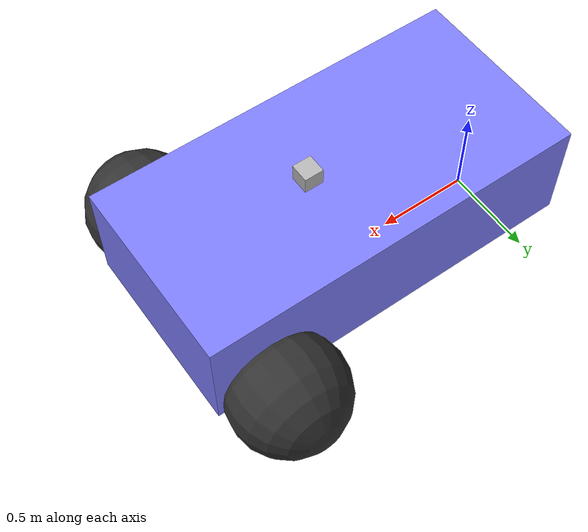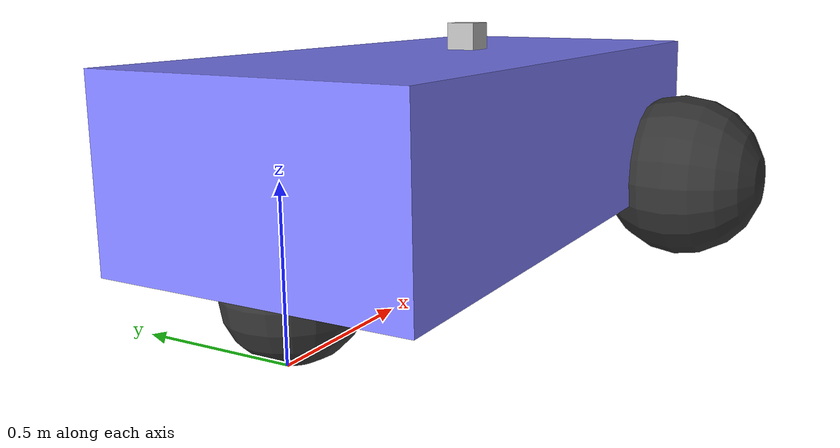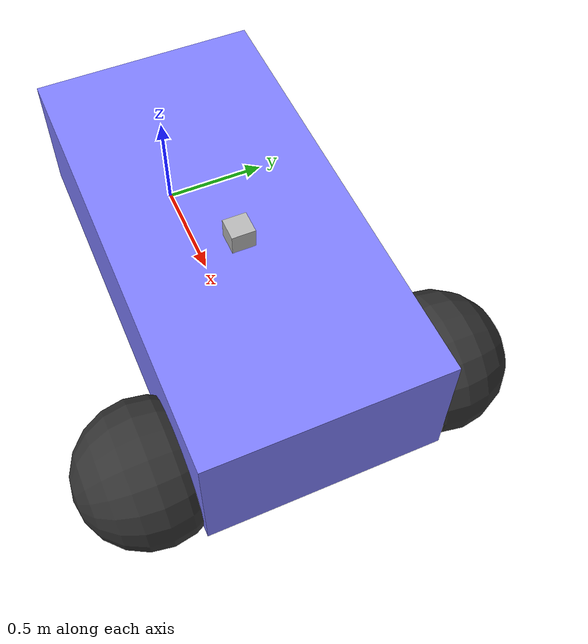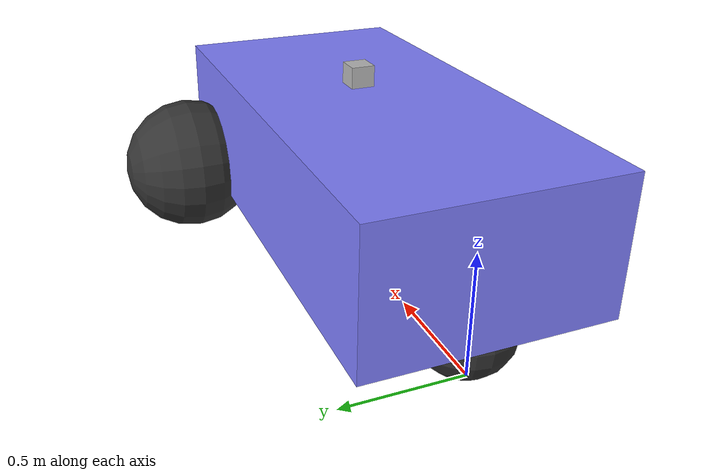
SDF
<?xml version="1.0" ?>
<!--
  You can echo lidar messages using:
    ign topic -e -t /lidar
-->
<sdf version="1.6">
<model name='vehicle_blue'>
      <pose>1 0 0.325 0 0 0.0</pose>
      <link name='chassis'>
        <pose>-0.151427 -0 0.175 0 -0 0</pose>
        <inertial>
          <mass>1.14395</mass>
          <inertia>
            <ixx>0.126164</ixx>
            <ixy>0</ixy>
            <ixz>0</ixz>
            <iyy>0.416519</iyy>
            <iyz>0</iyz>
            <izz>0.481014</izz>
          </inertia>
        </inertial>
        <visual name='visual'>
          <geometry>
            <box>
              <size>2.01142 1 0.568726</size>
            </box>
          </geometry>
          <material>
            <ambient>0.5 0.5 1.0 1</ambient>
            <diffuse>0.5 0.5 1.0 1</diffuse>
            <specular>0.0 0.0 1.0 1</specular>
          </material>
        </visual>
        <collision name='collision'>
          <geometry>
            <box>
              <size>2.01142 1 0.568726</size>
            </box>
          </geometry>
        </collision>
      </link>

      <link name="lidar_link">
        <pose>0 0 0.5 0 0 0</pose>
        <inertial>
          <mass>0.1</mass>
          <inertia>
            <ixx>0.000166667</ixx>
            <iyy>0.000166667</iyy>
            <izz>0.000166667</izz>
          </inertia>
        </inertial>
        <collision name="collision">
          <geometry>
            <box>
              <size>0.1 0.1 0.1</size>
            </box>
          </geometry>
        </collision>
        <visual name="visual">
          <geometry>
            <box>
              <size>0.1 0.1 0.1</size>
            </box>
          </geometry>
        </visual>
        <sensor name='gpu_lidar' type='gpu_lidar'>
          <pose>0 0 0 0 0 0</pose>
          <topic>lidar</topic>
          <update_rate>10</update_rate>
          <lidar>
            <scan>
              <horizontal>
                <samples>64</samples> <!-- Changed from 640 to 64  -->
                <resolution>1</resolution>
                <min_angle>-1.396263</min_angle>
                <max_angle>1.396263</max_angle>
              </horizontal>
              <vertical>
                <samples>1</samples>
                <resolution>1</resolution>
                <min_angle>0.0</min_angle>
                <max_angle>0.0</max_angle>
              </vertical>
            </scan>
            <range>
              <min>0.08</min>
              <max>10.0</max>
              <resolution>0.01</resolution>
            </range>
          </lidar>
          <alwaysOn>1</alwaysOn>
          <visualize>true</visualize>
        </sensor>
      </link>

      <link name='left_wheel'>
        <pose>0.554283 0.625029 -0.025 -1.5707 0 0</pose>
        <inertial>
          <mass>2</mass>
          <inertia>
            <ixx>0.145833</ixx>
            <ixy>0</ixy>
            <ixz>0</ixz>
            <iyy>0.145833</iyy>
            <iyz>0</iyz>
            <izz>0.125</izz>
          </inertia>
        </inertial>
        <visual name='visual'>
          <geometry>
            <sphere>
              <radius>0.3</radius>
            </sphere>
          </geometry>
          <material>
            <ambient>0.2 0.2 0.2 1</ambient>
            <diffuse>0.2 0.2 0.2 1</diffuse>
            <specular>0.2 0.2 0.2 1</specular>
          </material>
        </visual>
        <collision name='collision'>
          <geometry>
            <sphere>
              <radius>0.3</radius>
            </sphere>
          </geometry>
        </collision>
      </link>

      <link name='right_wheel'>
        <pose>0.554282 -0.625029 -0.025 -1.5707 0 0</pose>
        <inertial>
          <mass>2</mass>
          <inertia>
            <ixx>0.145833</ixx>
            <ixy>0</ixy>
            <ixz>0</ixz>
            <iyy>0.145833</iyy>
            <iyz>0</iyz>
            <izz>0.125</izz>
          </inertia>
        </inertial>
        <visual name='visual'>
          <geometry>
            <sphere>
              <radius>0.3</radius>
            </sphere>
          </geometry>
          <material>
            <ambient>0.2 0.2 0.2 1</ambient>
            <diffuse>0.2 0.2 0.2 1</diffuse>
            <specular>0.2 0.2 0.2 1</specular>
          </material>
        </visual>
        <collision name='collision'>
          <geometry>
            <sphere>
              <radius>0.3</radius>
            </sphere>
          </geometry>
        </collision>
      </link>

      <link name='caster'>
        <pose>-0.957138 -0 -0.125 0 -0 0</pose>
        <inertial>
          <mass>1</mass>
          <inertia>
            <ixx>0.1</ixx>
            <ixy>0</ixy>
            <ixz>0</ixz>
            <iyy>0.1</iyy>
            <iyz>0</iyz>
            <izz>0.1</izz>
          </inertia>
        </inertial>
        <visual name='visual'>
          <geometry>
            <sphere>
              <radius>0.2</radius>
            </sphere>
          </geometry>
          <material>
            <ambient>0.2 0.2 0.2 1</ambient>
            <diffuse>0.2 0.2 0.2 1</diffuse>
            <specular>0.2 0.2 0.2 1</specular>
          </material>
        </visual>
        <collision name='collision'>
          <geometry>
            <sphere>
              <radius>0.2</radius>
            </sphere>
          </geometry>
        </collision>
      </link>

      <joint name='lidar_sensor_joint' type='fixed'>
        <parent>chassis</parent>
        <child>lidar_link</child>
      </joint>

      <joint name='left_wheel_joint' type='revolute'>
        <parent>chassis</parent>
        <child>left_wheel</child>
        <axis>
          <xyz>0 0 1</xyz>
          <limit>
            <lower>-1.79769e+308</lower>
            <upper>1.79769e+308</upper>
          </limit>
        </axis>
      </joint>

      <joint name='right_wheel_joint' type='revolute'>
        <parent>chassis</parent>
        <child>right_wheel</child>
        <axis>
          <xyz>0 0 1</xyz>
          <limit>
            <lower>-1.79769e+308</lower>
            <upper>1.79769e+308</upper>
          </limit>
        </axis>
      </joint>

      <joint name='caster_wheel' type='ball'>
        <parent>chassis</parent>
        <child>caster</child>
      </joint>

      <plugin
        filename="libignition-gazebo-diff-drive-system.so"
        name="ignition::gazebo::systems::DiffDrive">
        <left_joint>left_wheel_joint</left_joint>
        <right_joint>right_wheel_joint</right_joint>
        <wheel_separation>1.25</wheel_separation>
        <wheel_radius>0.3</wheel_radius>
        <odom_publish_frequency>1</odom_publish_frequency>
      </plugin>
    </model>
</sdf>
